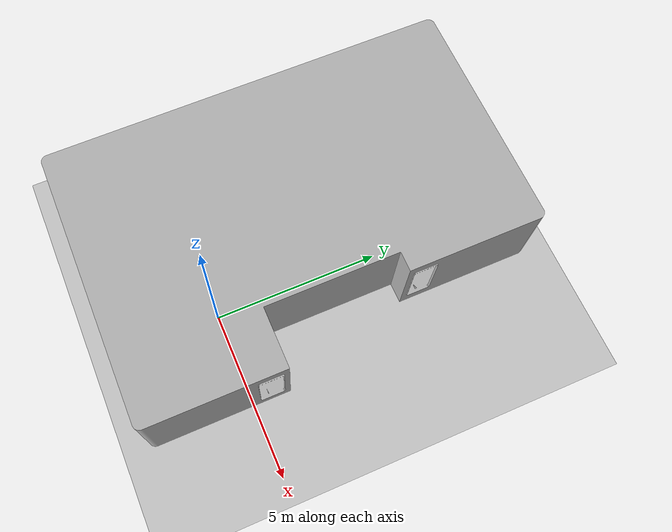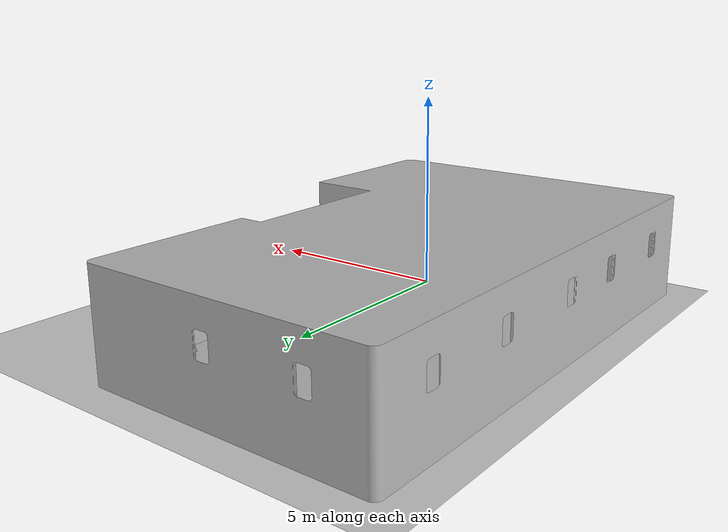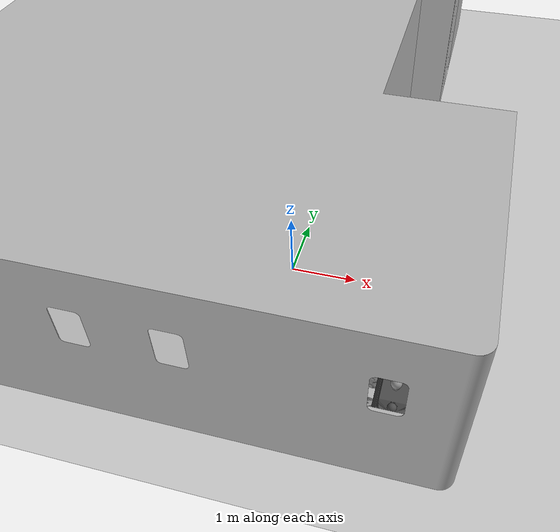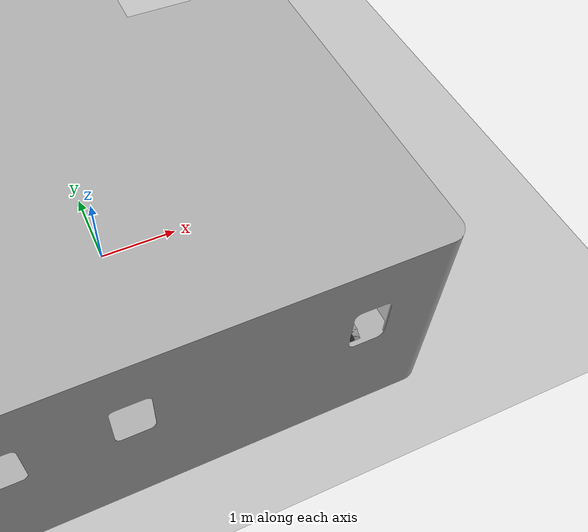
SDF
<sdf version="1.4">
 <world name="default">
  <physics type="ode">
   <gravity>0 0 -1</gravity>
   <ode>
    <solver><type>quick</type><iters>20</iters><sor>1</sor></solver>
    <constraints>
     <cfm>0</cfm>
     <erp>0.2</erp>
     <contact_max_correcting_vel>100</contact_max_correcting_vel>
     <contact_surface_layer>0</contact_surface_layer>
    </constraints>
   </ode>
   <max_step_size>0.002</max_step_size>
   <real_time_factor>1</real_time_factor>
   <real_time_update_rate>1000</real_time_update_rate>
  </physics>
  <light name="sun" type="directional">
   <pose>0 0 10 0 -0 0</pose>
   <diffuse>0.8 0.8 0.8 1</diffuse>
   <specular>0.2 0.2 0.2 1</specular>
   <attenuation>
    <range>1000</range>
    <constant>0.9</constant>
    <linear>0.01</linear>
    <quadratic>0.001</quadratic>
   </attenuation>
   <direction>-0.5 0.1 -0.9</direction>
  </light>
  <model name="ground_plane">
   <static>1</static>
   <link name="link">
    <collision name="collision">
     <geometry><plane><normal>0 0 1</normal><size>100 100</size></plane></geometry>
     <surface><friction><ode><mu>100</mu><mu2>50</mu2></ode></friction></surface>
    </collision>
    <visual name="visual">
     <cast_shadows>0</cast_shadows>
     <geometry><plane><normal>0 0 1</normal><size>100 100</size></plane></geometry>
     <material>
      <script><uri>file://media/materials/scripts/gazebo.material</uri><name>Gazebo/Grey</name></script>
     </material>
    </visual>
    <velocity_decay><linear>0</linear><angular>0</angular></velocity_decay>
   </link>
  </model>
  <scene><ambient>0.4 0.4 0.4 1</ambient><background>0.7 0.7 0.7 1</background><shadows>1</shadows></scene>
  <model name="gball">
   <static>1</static>
   <link name="base_footprint">
    <inertial>
     <pose>0.000487957 0 0.181407 0 -0 0</pose>
     <mass>97.8957</mass>
     <inertia>
      <ixx>3.91766</ixx>
      <ixy>0.008</ixy>
      <ixz>-0.159941</ixz>
      <iyy>8.51815</iyy>
      <iyz>-0.004</iyz>
      <izz>9.03139</izz>
     </inertia>
    </inertial>
    <collision name="base_footprint_collision">
     <geometry><box><size>0.001 0.001 0.001</size></box></geometry>
    </collision>
    <collision name="base_footprint_collision_arm_0_link">
     <pose>0.1 0 0.555 3.14159 -0 0</pose>
     <geometry>
      <mesh>
       <scale>1 1 1</scale>
       <uri>/home/carloscosta/catkin_ws/src/guardian_ros_pkg/guardian_sim/robotnik_powerball_basics/meshes/dae/powerball0.dae</uri>
      </mesh>
     </geometry>
    </collision>
    <collision name="base_footprint_collision_base_link">
     <pose>0 0 0.18 0 -0 0</pose>
     <geometry>
      <mesh>
       <scale>1 1 1</scale>
       <uri>/home/carloscosta/catkin_ws/src/guardian_ros_pkg/guardian_sim/guardian_description/meshes/chassis/v6/chassisV6.dae</uri>
      </mesh>
     </geometry>
    </collision>
    <collision name="base_footprint_collision_imu_link">
     <pose>0 0 0.4625 0 -0 0</pose>
     <geometry><box><size>0.001 0.001 0.001</size></box></geometry>
    </collision>
    <collision name="base_footprint_collision_left_track">
     <pose>0 0 0.18 0 -0 0</pose>
     <geometry>
      <mesh>
       <scale>1 1 1</scale>
       <uri>/home/carloscosta/catkin_ws/src/guardian_ros_pkg/guardian_sim/guardian_description/meshes/others/v5/trackV5_l.dae</uri>
      </mesh>
     </geometry>
    </collision>
    <collision name="base_footprint_collision_right_track">
     <pose>0 0 0.18 0 -0 3.14159</pose>
     <geometry>
      <mesh>
       <scale>1 1 1</scale>
       <uri>/home/carloscosta/catkin_ws/src/guardian_ros_pkg/guardian_sim/guardian_description/meshes/others/v5/trackV5_l.dae</uri>
      </mesh>
     </geometry>
    </collision>
    <visual name="base_footprint_visual">
     <geometry><box><size>0.001 0.001 0.001</size></box></geometry>
     <material><script><name>Gazebo/Green</name><uri>__default__</uri></script></material>
    </visual>
    <visual name="base_footprint_visual_arm_0_link">
     <pose>0.1 0 0.555 3.14159 -0 0</pose>
     <geometry>
      <mesh>
       <scale>1 1 1</scale>
       <uri>/home/carloscosta/catkin_ws/src/guardian_ros_pkg/guardian_sim/robotnik_powerball_basics/meshes/dae/powerball0.dae</uri>
      </mesh>
     </geometry>
     <material><script><name>Gazebo/Grey</name><uri>__default__</uri></script></material>
    </visual>
    <visual name="base_footprint_visual_base_link">
     <pose>0 0 0.18 0 -0 0</pose>
     <geometry>
      <mesh>
       <scale>1 1 1</scale>
       <uri>/home/carloscosta/catkin_ws/src/guardian_ros_pkg/guardian_sim/guardian_description/meshes/chassis/v6/chassisV6.dae</uri>
      </mesh>
     </geometry>
     <material><script><name>Gazebo/DarkGrey</name><uri>__default__</uri></script></material>
    </visual>
    <visual name="base_footprint_visual_imu_link">
     <pose>0 0 0.4625 0 -0 0</pose>
     <geometry><box><size>0.001 0.001 0.001</size></box></geometry>
    </visual>
    <visual name="base_footprint_visual_left_track">
     <pose>0 0 0.18 0 -0 0</pose>
     <geometry>
      <mesh>
       <scale>1 1 1</scale>
       <uri>/home/carloscosta/catkin_ws/src/guardian_ros_pkg/guardian_sim/guardian_description/meshes/others/v5/trackV5_l.dae</uri>
      </mesh>
     </geometry>
     <material><script><name>Gazebo/FlatBlack</name><uri>__default__</uri></script></material>
     <material><script><name>Gazebo/FlatBlack</name><uri>__default__</uri></script></material>
    </visual>
    <visual name="base_footprint_visual_right_track">
     <pose>0 0 0.18 0 -0 3.14159</pose>
     <geometry>
      <mesh>
       <scale>1 1 1</scale>
       <uri>/home/carloscosta/catkin_ws/src/guardian_ros_pkg/guardian_sim/guardian_description/meshes/others/v5/trackV5_l.dae</uri>
      </mesh>
     </geometry>
     <material><script><name>Gazebo/FlatBlack</name><uri>__default__</uri></script></material>
     <material><script><name>Gazebo/FlatBlack</name><uri>__default__</uri></script></material>
    </visual>
    <velocity_decay><linear>0</linear><angular>0</angular></velocity_decay>
    <velocity_decay><linear>0</linear><angular>0</angular></velocity_decay>
    <velocity_decay><linear>0</linear><angular>0</angular></velocity_decay>
    <velocity_decay><linear>0</linear><angular>0</angular></velocity_decay>
    <sensor name="base_hokuyo_sensor" type="ray">
     <visualize>0</visualize>
     <update_rate>10</update_rate>
     <ray>
      <scan>
       <horizontal>
        <samples>684</samples>
        <resolution>1</resolution>
        <min_angle>-2.0944</min_angle>
        <max_angle>2.0944</max_angle>
       </horizontal>
      </scan>
      <range><min>0.1</min><max>5</max><resolution>0.001</resolution></range>
      <noise><type>gaussian</type><mean>0</mean><stddev>0.01</stddev></noise>
     </ray>
     <pose>0.49 0 0.41 0 -0 0</pose>
    </sensor>
    <velocity_decay><linear>0</linear><angular>0</angular></velocity_decay>
    <velocity_decay><linear>0</linear><angular>0</angular></velocity_decay>
    <velocity_decay><linear>0</linear><angular>0</angular></velocity_decay>
    <velocity_decay><linear>0</linear><angular>0</angular></velocity_decay>
   </link>
   <link name="arm_1_link">
    <pose>0.1 4.807e-09 0.6447 3.14159 -0 -1.5708</pose>
    <inertial>
     <mass>0.29364</mass>
     <inertia><ixx>0.01</ixx><ixy>0</ixy><ixz>0</ixz><iyy>0.01</iyy><iyz>0</iyz><izz>0.01</izz></inertia>
    </inertial>
    <collision name="arm_1_link_collision">
     <geometry>
      <mesh>
       <scale>1 1 1</scale>
       <uri>/home/carloscosta/catkin_ws/src/guardian_ros_pkg/guardian_sim/robotnik_powerball_basics/meshes/dae/powerball1.dae</uri>
      </mesh>
     </geometry>
    </collision>
    <visual name="arm_1_link_visual">
     <geometry>
      <mesh>
       <scale>1 1 1</scale>
       <uri>/home/carloscosta/catkin_ws/src/guardian_ros_pkg/guardian_sim/robotnik_powerball_basics/meshes/dae/powerball1.dae</uri>
      </mesh>
     </geometry>
     <material><script><name>Gazebo/Grey</name><uri>__default__</uri></script></material>
    </visual>
    <velocity_decay><linear>0</linear><angular>0</angular></velocity_decay>
   </link>
   <joint name="arm_1_joint" type="revolute">
    <child>arm_1_link</child>
    <parent>base_footprint</parent>
    <axis>
     <xyz>0 0 1</xyz>
     <limit><lower>-6.28319</lower><upper>6.28319</upper><effort>370</effort><velocity>2</velocity></limit>
     <dynamics><damping>10</damping></dynamics>
    </axis>
   </joint>
   <link name="arm_2_link">
    <pose>0.1 4.807e-09 0.6447 -1.57079 -0.79 -1.5708</pose>
    <inertial>
     <mass>1.68311</mass>
     <inertia><ixx>0.03</ixx><ixy>0</ixy><ixz>0</ixz><iyy>0.03</iyy><iyz>0</iyz><izz>0.03</izz></inertia>
    </inertial>
    <collision name="arm_2_link_collision">
     <geometry>
      <mesh>
       <scale>1 1 1</scale>
       <uri>/home/carloscosta/catkin_ws/src/guardian_ros_pkg/guardian_sim/robotnik_powerball_basics/meshes/dae/powerball2_robotnik.dae</uri>
      </mesh>
     </geometry>
    </collision>
    <visual name="arm_2_link_visual">
     <geometry>
      <mesh>
       <scale>1 1 1</scale>
       <uri>/home/carloscosta/catkin_ws/src/guardian_ros_pkg/guardian_sim/robotnik_powerball_basics/meshes/dae/powerball2_robotnik.dae</uri>
      </mesh>
     </geometry>
     <material><script><name>Gazebo/BlueLaser</name><uri>__default__</uri></script></material>
    </visual>
    <velocity_decay><linear>0</linear><angular>0</angular></velocity_decay>
   </link>
   <joint name="arm_2_joint" type="revolute">
    <child>arm_2_link</child>
    <parent>arm_1_link</parent>
    <axis>
     <xyz>0 -1 -4e-06</xyz>
     <limit><lower>-2.0944</lower><upper>2.0944</upper><effort>370</effort><velocity>2</velocity></limit>
     <dynamics><damping>10</damping></dynamics>
    </axis>
   </joint>
   <link name="arm_3_link">
    <pose>0.098 0.355 0.996 -1.57079 -1.57079 1.57079</pose>
    <inertial>
     <mass>2.1</mass>
     <inertia><ixx>0.03</ixx><ixy>0</ixy><ixz>0</ixz><iyy>0.03</iyy><iyz>0</iyz><izz>0.03</izz></inertia>
    </inertial>
    <collision name="arm_3_link_collision">
     <geometry>
      <mesh>
       <scale>1 1 1</scale>
       <uri>/home/carloscosta/catkin_ws/src/guardian_ros_pkg/guardian_sim/robotnik_powerball_basics/meshes/dae/powerball3.dae</uri>
      </mesh>
     </geometry>
    </collision>
    <visual name="arm_3_link_visual">
     <geometry>
      <mesh>
       <scale>1 1 1</scale>
       <uri>/home/carloscosta/catkin_ws/src/guardian_ros_pkg/guardian_sim/robotnik_powerball_basics/meshes/dae/powerball3.dae</uri>
      </mesh>
     </geometry>
     <material><script><name>Gazebo/Grey</name><uri>__default__</uri></script></material>
    </visual>
    <velocity_decay><linear>0</linear><angular>0</angular></velocity_decay>
   </link>
   <joint name="arm_3_joint" type="revolute">
    <child>arm_3_link</child>
    <parent>arm_2_link</parent>
    <axis>
     <xyz>0 1 1e-06</xyz>
     <limit><lower>-6.28319</lower><upper>6.28319</upper><effort>176</effort><velocity>2</velocity></limit>
     <dynamics><damping>5</damping></dynamics>
    </axis>
   </joint>
   <link name="arm_4_link">
    <pose>0.098 0.355 0.996 -1.5708 -2.56344e-12 3.14159</pose>
    <inertial>
     <mass>1.68311</mass>
     <inertia><ixx>0.03</ixx><ixy>0</ixy><ixz>0</ixz><iyy>0.03</iyy><iyz>0</iyz><izz>0.03</izz></inertia>
    </inertial>
    <collision name="arm_4_link_collision">
     <geometry>
      <mesh>
       <scale>1 1 1</scale>
       <uri>/home/carloscosta/catkin_ws/src/guardian_ros_pkg/guardian_sim/robotnik_powerball_basics/meshes/dae/powerball4_robotnik.dae</uri>
      </mesh>
     </geometry>
    </collision>
    <visual name="arm_4_link_visual">
     <geometry>
      <mesh>
       <scale>1 1 1</scale>
       <uri>/home/carloscosta/catkin_ws/src/guardian_ros_pkg/guardian_sim/robotnik_powerball_basics/meshes/dae/powerball4_robotnik.dae</uri>
      </mesh>
     </geometry>
     <material><script><name>Gazebo/BlueLaser</name><uri>__default__</uri></script></material>
    </visual>
    <velocity_decay><linear>0</linear><angular>0</angular></velocity_decay>
   </link>
   <joint name="arm_4_joint" type="revolute">
    <child>arm_4_link</child>
    <parent>arm_3_link</parent>
    <axis>
     <xyz>0 -3e-06 -1</xyz>
     <limit><lower>-2.0944</lower><upper>2.0944</upper><effort>176</effort><velocity>2</velocity></limit>
     <dynamics><damping>5</damping></dynamics>
    </axis>
   </joint>
   <link name="arm_5_link">
    <pose>0.098 0.7193 0.996 0 -2.56344e-12 3.14159</pose>
    <inertial>
     <mass>0.807</mass>
     <inertia><ixx>0.03</ixx><ixy>0</ixy><ixz>0</ixz><iyy>0.03</iyy><iyz>0</iyz><izz>0.03</izz></inertia>
    </inertial>
    <collision name="arm_5_link_collision">
     <geometry>
      <mesh>
       <scale>1 1 1</scale>
       <uri>/home/carloscosta/catkin_ws/src/guardian_ros_pkg/guardian_sim/robotnik_powerball_basics/meshes/dae/powerball5.dae</uri>
      </mesh>
     </geometry>
    </collision>
    <visual name="arm_5_link_visual">
     <geometry>
      <mesh>
       <scale>1 1 1</scale>
       <uri>/home/carloscosta/catkin_ws/src/guardian_ros_pkg/guardian_sim/robotnik_powerball_basics/meshes/dae/powerball5.dae</uri>
      </mesh>
     </geometry>
     <material><script><name>Gazebo/Grey</name><uri>__default__</uri></script></material>
    </visual>
    <velocity_decay><linear>0</linear><angular>0</angular></velocity_decay>
   </link>
   <joint name="arm_5_joint" type="revolute">
    <child>arm_5_link</child>
    <parent>arm_4_link</parent>
    <axis>
     <xyz>3e-06 1 -6e-06</xyz>
     <limit><lower>-6.28319</lower><upper>6.28319</upper><effort>41.6</effort><velocity>2</velocity></limit>
     <dynamics><damping>5</damping></dynamics>
    </axis>
   </joint>
   <link name="arm_6_link">
    <pose>0.098 0.7193 0.996 -1.5708 -2.56344e-12 3.14159</pose>
    <inertial>
     <mass>0.819</mass>
     <inertia><ixx>0.01</ixx><ixy>0</ixy><ixz>0</ixz><iyy>0.01</iyy><iyz>0</iyz><izz>0.01</izz></inertia>
    </inertial>
    <collision name="arm_6_link_collision">
     <geometry>
      <mesh>
       <scale>1 1 1</scale>
       <uri>/home/carloscosta/catkin_ws/src/guardian_ros_pkg/guardian_sim/robotnik_powerball_basics/meshes/dae/powerball6.dae</uri>
      </mesh>
     </geometry>
    </collision>
    <visual name="arm_6_link_visual">
     <geometry>
      <mesh>
       <scale>1 1 1</scale>
       <uri>/home/carloscosta/catkin_ws/src/guardian_ros_pkg/guardian_sim/robotnik_powerball_basics/meshes/dae/powerball6.dae</uri>
      </mesh>
     </geometry>
     <material><script><name>Gazebo/BlueLaser</name><uri>__default__</uri></script></material>
    </visual>
    <velocity_decay><linear>0</linear><angular>0</angular></velocity_decay>
   </link>
   <joint name="arm_6_joint" type="revolute">
    <child>arm_6_link</child>
    <parent>arm_5_link</parent>
    <axis>
     <xyz>0 3e-06 1</xyz>
     <limit><lower>-2.0944</lower><upper>2.0944</upper><effort>20.1</effort><velocity>2</velocity></limit>
     <dynamics><damping>5</damping></dynamics>
    </axis>
   </joint>
   <link name="back_left_wheel">
    <pose>-0.3 0.265 0.18 0 -0 0</pose>
    <inertial>
     <mass>4.5</mass>
     <inertia><ixx>0.059</ixx><ixy>0</ixy><ixz>0</ixz><iyy>0.055</iyy><iyz>0</iyz><izz>0.059</izz></inertia>
    </inertial>
    <collision name="back_left_wheel_collision">
     <pose>0 0 0 0 -0 -3.14159</pose>
     <geometry>
      <mesh>
       <scale>1 1 1</scale>
       <uri>/home/carloscosta/catkin_ws/src/guardian_ros_pkg/guardian_sim/guardian_description/meshes/wheel.dae</uri>
      </mesh>
     </geometry>
     <surface>
      <contact><ode><kp>10000</kp><kd>100</kd><max_vel>2</max_vel></ode></contact>
      <friction><ode><mu>2.5</mu><mu2>0.9</mu2><fdir1>1 0 0</fdir1></ode></friction>
     </surface>
    </collision>
    <visual name="back_left_wheel_visual">
     <pose>0 0 0 0 -0 -3.14159</pose>
     <geometry>
      <mesh>
       <scale>1 1 1</scale>
       <uri>/home/carloscosta/catkin_ws/src/guardian_ros_pkg/guardian_sim/guardian_description/meshes/wheel.dae</uri>
      </mesh>
     </geometry>
     <material><script><name>Gazebo/Grey</name><uri>__default__</uri></script></material>
    </visual>
    <velocity_decay><linear>0</linear><angular>0</angular></velocity_decay>
   </link>
   <joint name="joint_back_left_wheel" type="revolute">
    <child>back_left_wheel</child>
    <parent>base_footprint</parent>
    <axis><xyz>0 1 0</xyz><limit><lower>-1e+16</lower><upper>1e+16</upper></limit></axis>
   </joint>
   <link name="back_right_wheel">
    <pose>-0.3 -0.265 0.18 0 -0 0</pose>
    <inertial>
     <mass>4.5</mass>
     <inertia><ixx>0.059</ixx><ixy>0</ixy><ixz>0</ixz><iyy>0.055</iyy><iyz>0</iyz><izz>0.059</izz></inertia>
    </inertial>
    <collision name="back_right_wheel_collision">
     <geometry>
      <mesh>
       <scale>1 1 1</scale>
       <uri>/home/carloscosta/catkin_ws/src/guardian_ros_pkg/guardian_sim/guardian_description/meshes/wheel.dae</uri>
      </mesh>
     </geometry>
     <surface>
      <contact><ode><kp>10000</kp><kd>100</kd><max_vel>2</max_vel></ode></contact>
      <friction><ode><mu>2.5</mu><mu2>0.9</mu2><fdir1>1 0 0</fdir1></ode></friction>
     </surface>
    </collision>
    <visual name="back_right_wheel_visual">
     <geometry>
      <mesh>
       <scale>1 1 1</scale>
       <uri>/home/carloscosta/catkin_ws/src/guardian_ros_pkg/guardian_sim/guardian_description/meshes/wheel.dae</uri>
      </mesh>
     </geometry>
     <material><script><name>Gazebo/Grey</name><uri>__default__</uri></script></material>
    </visual>
    <velocity_decay><linear>0</linear><angular>0</angular></velocity_decay>
   </link>
   <joint name="joint_back_right_wheel" type="revolute">
    <child>back_right_wheel</child>
    <parent>base_footprint</parent>
    <axis><xyz>0 1 0</xyz><limit><lower>-1e+16</lower><upper>1e+16</upper></limit></axis>
   </joint>
   <link name="camera_pan_link">
    <pose>0.18 0 0.45 0 -0 0</pose>
    <inertial>
     <mass>0.1</mass>
     <inertia><ixx>0.1</ixx><ixy>0</ixy><ixz>0</ixz><iyy>0.1</iyy><iyz>0</iyz><izz>0.1</izz></inertia>
    </inertial>
    <velocity_decay><linear>0</linear><angular>0</angular></velocity_decay>
   </link>
   <joint name="joint_camera_pan" type="revolute">
    <child>camera_pan_link</child>
    <parent>base_footprint</parent>
    <axis><xyz>0 0 1</xyz><limit><lower>-1e+16</lower><upper>1e+16</upper></limit></axis>
   </joint>
   <link name="camera_tilt_link">
    <pose>0.18 0 0.45 0 -0 0</pose>
    <inertial>
     <mass>0.1</mass>
     <inertia><ixx>0.1</ixx><ixy>0</ixy><ixz>0</ixz><iyy>0.1</iyy><iyz>0</iyz><izz>0.1</izz></inertia>
    </inertial>
    <velocity_decay><linear>0</linear><angular>0</angular></velocity_decay>
   </link>
   <joint name="joint_camera_tilt" type="revolute">
    <child>camera_tilt_link</child>
    <parent>camera_pan_link</parent>
    <axis><xyz>0 1 0</xyz><limit><lower>-1e+16</lower><upper>1e+16</upper></limit></axis>
   </joint>
   <link name="front_left_wheel">
    <pose>0.3 0.265 0.18 0 -0 0</pose>
    <inertial>
     <mass>4.5</mass>
     <inertia><ixx>0.059</ixx><ixy>0</ixy><ixz>0</ixz><iyy>0.055</iyy><iyz>0</iyz><izz>0.059</izz></inertia>
    </inertial>
    <collision name="front_left_wheel_collision">
     <pose>0 0 0 0 -0 -3.14159</pose>
     <geometry>
      <mesh>
       <scale>1 1 1</scale>
       <uri>/home/carloscosta/catkin_ws/src/guardian_ros_pkg/guardian_sim/guardian_description/meshes/wheel.dae</uri>
      </mesh>
     </geometry>
     <surface>
      <contact><ode><kp>10000</kp><kd>100</kd><max_vel>2</max_vel></ode></contact>
      <friction><ode><mu>2.5</mu><mu2>0.9</mu2><fdir1>1 0 0</fdir1></ode></friction>
     </surface>
    </collision>
    <visual name="front_left_wheel_visual">
     <pose>0 0 0 0 -0 -3.14159</pose>
     <geometry>
      <mesh>
       <scale>1 1 1</scale>
       <uri>/home/carloscosta/catkin_ws/src/guardian_ros_pkg/guardian_sim/guardian_description/meshes/wheel.dae</uri>
      </mesh>
     </geometry>
     <material><script><name>Gazebo/Grey</name><uri>__default__</uri></script></material>
    </visual>
    <velocity_decay><linear>0</linear><angular>0</angular></velocity_decay>
   </link>
   <joint name="joint_front_left_wheel" type="revolute">
    <child>front_left_wheel</child>
    <parent>base_footprint</parent>
    <axis><xyz>0 1 0</xyz><limit><lower>-1e+16</lower><upper>1e+16</upper></limit></axis>
   </joint>
   <link name="front_right_wheel">
    <pose>0.3 -0.265 0.18 0 -0 0</pose>
    <inertial>
     <mass>4.5</mass>
     <inertia><ixx>0.059</ixx><ixy>0</ixy><ixz>0</ixz><iyy>0.055</iyy><iyz>0</iyz><izz>0.059</izz></inertia>
    </inertial>
    <collision name="front_right_wheel_collision">
     <geometry>
      <mesh>
       <scale>1 1 1</scale>
       <uri>/home/carloscosta/catkin_ws/src/guardian_ros_pkg/guardian_sim/guardian_description/meshes/wheel.dae</uri>
      </mesh>
     </geometry>
     <surface>
      <contact><ode><kp>10000</kp><kd>100</kd><max_vel>2</max_vel></ode></contact>
      <friction><ode><mu>2.5</mu><mu2>0.9</mu2><fdir1>1 0 0</fdir1></ode></friction>
     </surface>
    </collision>
    <visual name="front_right_wheel_visual">
     <geometry>
      <mesh>
       <scale>1 1 1</scale>
       <uri>/home/carloscosta/catkin_ws/src/guardian_ros_pkg/guardian_sim/guardian_description/meshes/wheel.dae</uri>
      </mesh>
     </geometry>
     <material><script><name>Gazebo/Grey</name><uri>__default__</uri></script></material>
    </visual>
    <velocity_decay><linear>0</linear><angular>0</angular></velocity_decay>
   </link>
   <joint name="joint_front_right_wheel" type="revolute">
    <child>front_right_wheel</child>
    <parent>base_footprint</parent>
    <axis><xyz>0 1 0</xyz><limit><lower>-1e+16</lower><upper>1e+16</upper></limit></axis>
   </joint>
   <pose>1.9533 -2.06686 0.006331 0.000172 0.003759 -1.5708</pose>
  </model>
  <model name="ship_interior">
   <link name="link">
    <inertial>
     <mass>0.1</mass>
     <inertia><ixx>1</ixx><ixy>0</ixy><ixz>0</ixz><iyy>1</iyy><iyz>0</iyz><izz>1</izz></inertia>
    </inertial>
    <collision name="collision">
     <geometry><mesh><uri>model://ship_interior/meshes/ship_interior.stl</uri></mesh></geometry>
    </collision>
    <visual name="visual">
     <geometry><mesh><uri>model://ship_interior/meshes/ship_interior.stl</uri></mesh></geometry>
    </visual>
    <velocity_decay><linear>0</linear><angular>0</angular></velocity_decay>
   </link>
   <pose>-0.175463 1.11727 -6.8e-05 2.5e-05 -5.6e-05 -0.000158</pose>
   <static>0</static>
  </model>
 </world>
</sdf>
